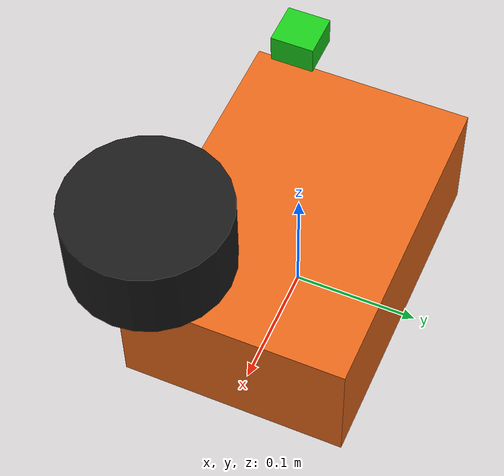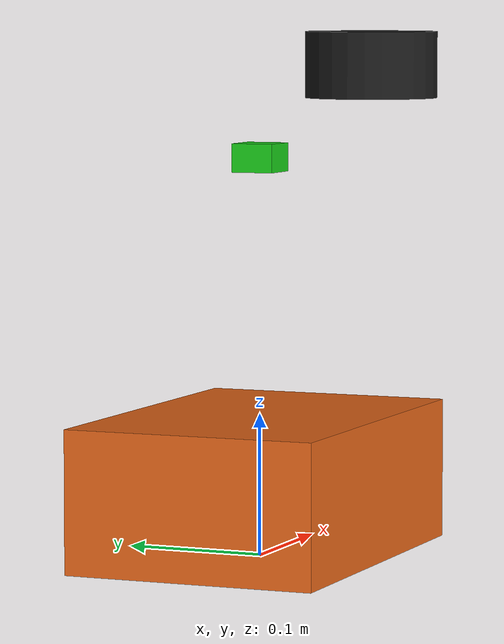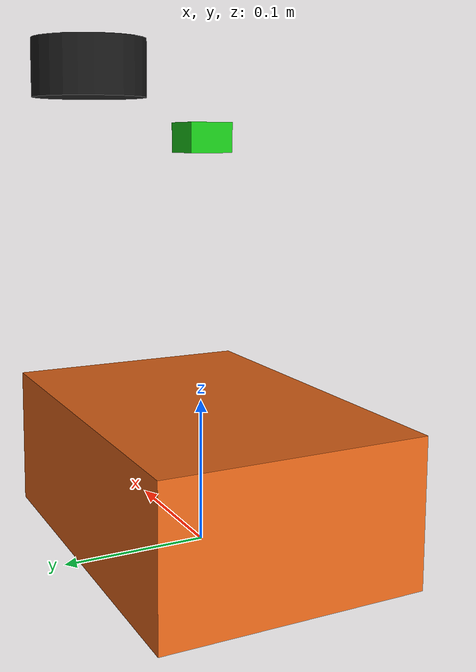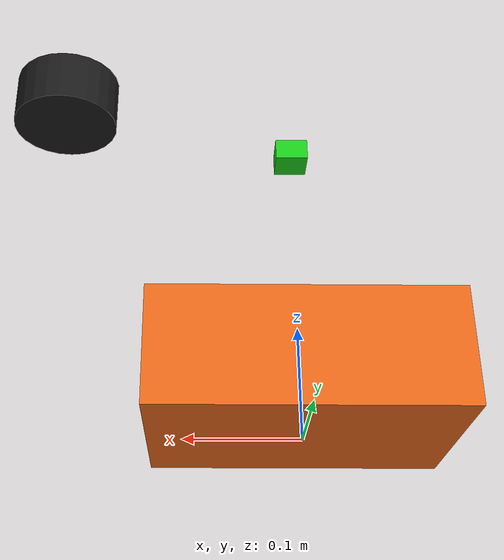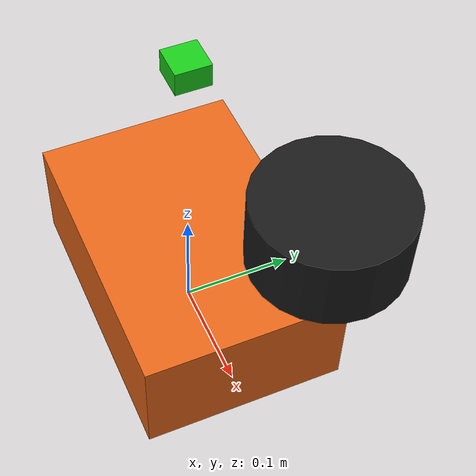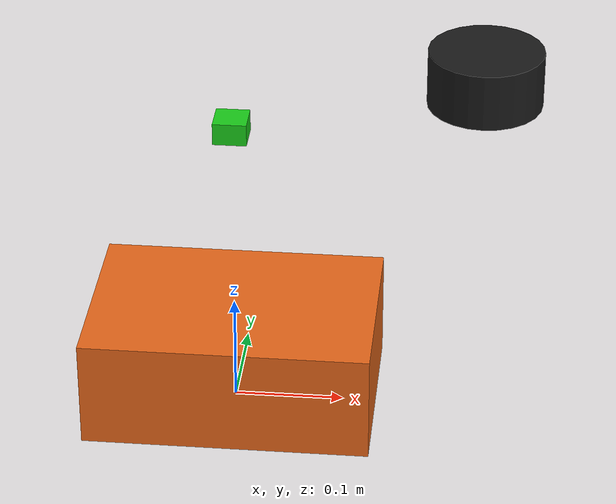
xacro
<?xml version="1.0"?>
<robot xmlns:xacro="http://www.ros.org/wiki/xacro" name="field_robot">

  <!-- Kích thước khung xe gần giống xe thật -->
  <xacro:property name="base_len" value="0.26"/>   <!-- chiều dài ~26 cm -->
  <xacro:property name="base_wid" value="0.18"/>   <!-- chiều rộng ~18 cm -->
  <xacro:property name="base_h"   value="0.10"/>   <!-- chiều cao thân ~10 cm -->

  <link name="base_link">
    <inertial>
      <origin xyz="0 0 0.03" rpy="0 0 0"/>
      <mass value="12.0"/>
      <inertia ixx="0.2" ixy="0" ixz="0" iyy="0.2" iyz="0" izz="0.3"/>
    </inertial>
    <visual>
      <origin xyz="0 0 ${base_h/2.0}" rpy="0 0 0"/>
      <geometry>
        <box size="${base_len} ${base_wid} ${base_h}"/>
      </geometry>
      <material name="orange">
        <color rgba="0.9 0.4 0.1 1.0"/>
      </material>
    </visual>
    <collision>
      <origin xyz="0 0 ${base_h/2.0}" rpy="0 0 0"/>
      <geometry>
        <box size="${base_len} ${base_wid} ${base_h}"/>
      </geometry>
    </collision>
  </link>

  <link name="base_footprint"/>
  <joint name="base_footprint_joint" type="fixed">
    <origin xyz="0 0 0" rpy="0 0 0"/>
    <parent link="base_footprint"/>
    <child link="base_link"/>
  </joint>

  <!-- RPLIDAR A1 trên tầng trên, hơi nhô ra phía trước -->
  <link name="laser_link">
    <visual>
      <origin xyz="0.11 0 ${base_h + 0.07}" rpy="0 0 0"/>
      <geometry>
        <cylinder length="0.05" radius="0.05"/>
      </geometry>
      <material name="black">
        <color rgba="0.1 0.1 0.1 1.0"/>
      </material>
    </visual>
  </link>
  <joint name="laser_joint" type="fixed">
    <origin xyz="0.11 0 ${base_h + 0.07}" rpy="0 0 0"/>
    <parent link="base_link"/>
    <child link="laser_link"/>
  </joint>

  <!-- IMU (MPU6050) gần Jetson -->
  <link name="imu_link">
    <visual>
      <origin xyz="0 0 ${base_h + 0.04}" rpy="0 0 0"/>
      <geometry>
        <box size="0.03 0.03 0.02"/>
      </geometry>
      <material name="green">
        <color rgba="0.1 0.8 0.1 1.0"/>
      </material>
    </visual>
  </link>
  <joint name="imu_joint" type="fixed">
    <origin xyz="0 0 ${base_h + 0.04}" rpy="0 0 0"/>
    <parent link="base_link"/>
    <child link="imu_link"/>
  </joint>

</robot>
